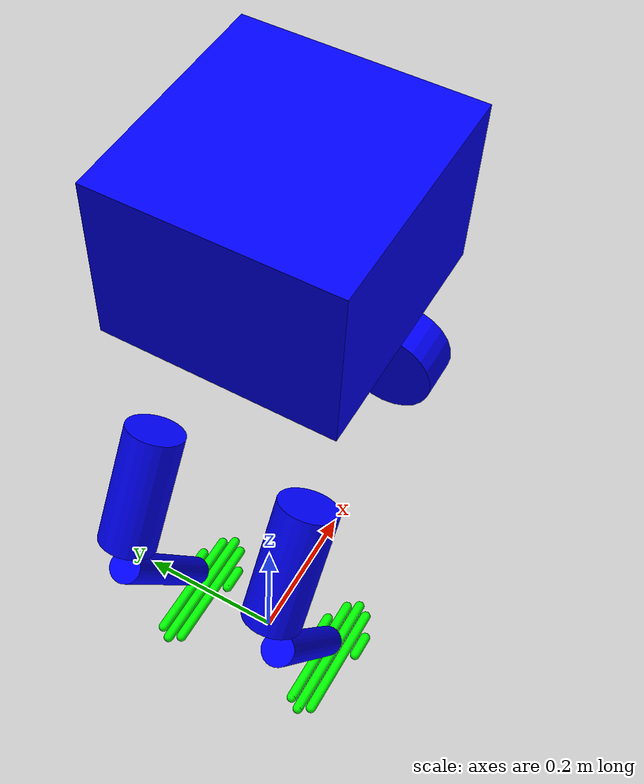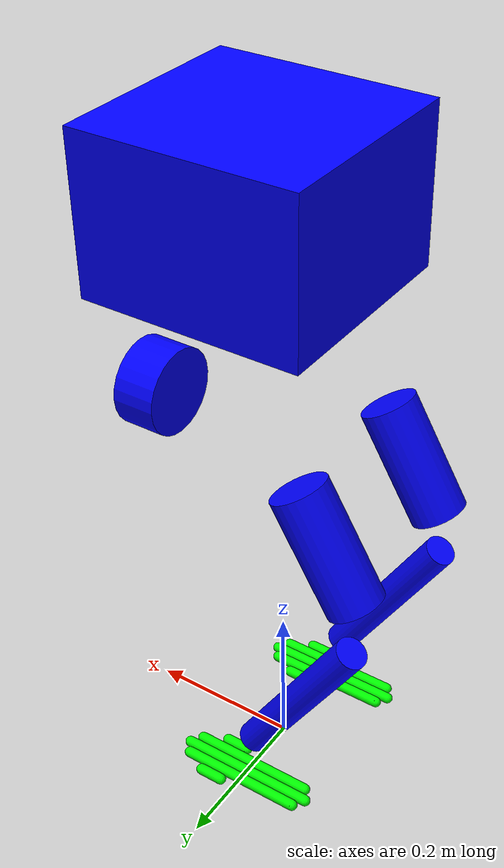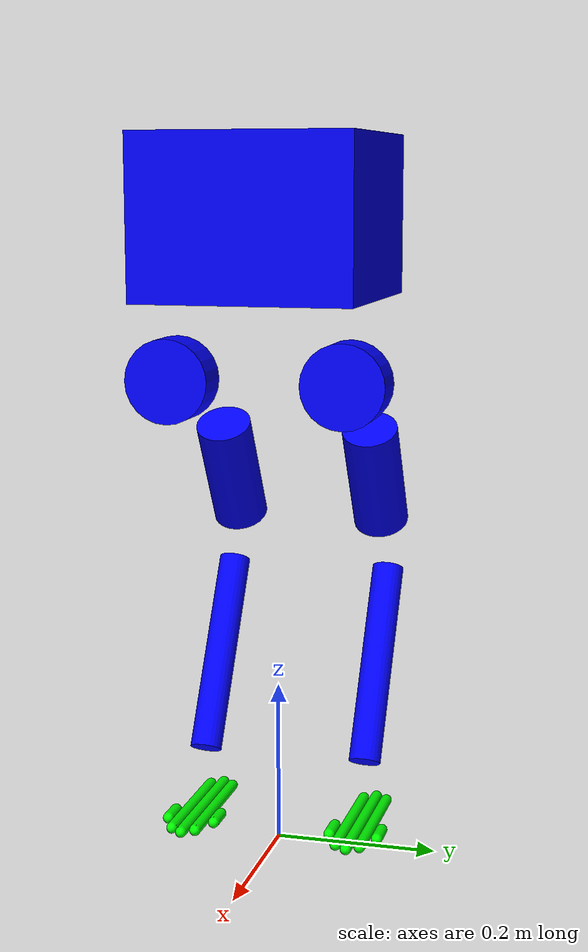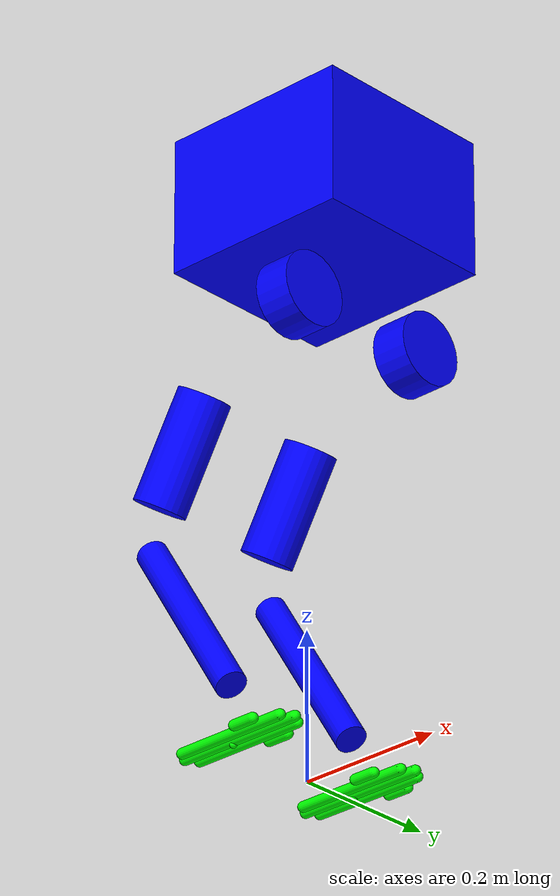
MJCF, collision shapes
<mujoco model="flat_foot">
    <compiler angle="radian" meshdir="../meshes/" />
    <size njmax="500" nconmax="100" />

    <default>
        <light castshadow="false" diffuse="1 1 1" />
        <camera fovy="60"/>
        <default class="visual">
            <geom contype="0" conaffinity="0" group="1" type="mesh" rgba="0.9 0.9 0.9 1.0"/>
        </default>
        <geom contype="1" conaffinity="1" condim="3" friction="0.6 0.005 0.0001" rgba="0.5 0.6 0.7 0.0" margin="0.001" group="0" />
    </default>
    <visual>
        <rgba com="0.502 1.0 0 0.5" contactpoint="1.0 1.0 0.6 0.4" contactforce="0.2 0.98 0.2 0.8"/>
        <scale com="0.2" forcewidth="0.05" contactwidth="0.10" contactheight="0.04"/>
    </visual>

    <asset>
        <mesh name="base_Link" file="base_Link.STL" />
        <mesh name="abad_L_Link" file="abad_L_Link.STL" />
        <mesh name="hip_L_Link" file="hip_L_Link.STL" />
        <mesh name="knee_L_Link" file="knee_L_Link.STL" />
        <mesh name="ankle_L_Link" file="ankle_L_Link.STL" />
        <mesh name="abad_R_Link" file="abad_R_Link.STL" />
        <mesh name="hip_R_Link" file="hip_R_Link.STL" />
        <mesh name="knee_R_Link" file="knee_R_Link.STL" />
        <mesh name="ankle_R_Link" file="ankle_R_Link.STL" />
    </asset>

    <option integrator="implicitfast" timestep="0.001"/>

    <worldbody>
        <body name="base_Link" pos="0 0 0.85">
            <inertial pos="0.0457123 0.000139854 -0.163809" quat="0.972578 -0.00615364 -0.232461 0.00398682" mass="9.595" diaginertia="0.154712 0.11093 0.0846371" />
            <freejoint name="floating_base_joint"/>
            <site name="imu" pos="0 0 0"/>
            <geom class="visual" rgba="0.79216 0.81961 0.93333 1" mesh="base_Link" />
            <geom name="base_collision" size="0.135 0.13 0.095" pos="0.03 0 -0.072" type="box" rgba="0 0 1 0" />

            <body name="abad_L_Link" pos="0.05556 0.105 -0.2602">
                <inertial pos="-0.06977 0.04479 0.00057" quat="0.595024 0.579772 0.394141 0.393019" mass="1.469" diaginertia="0.00252289 0.00208104 0.00139163" />
                <joint name="abad_L_Joint" pos="0 0 0" axis="1 0 0" limited="true" range="-0.38397 1.39626" />
                <geom class="visual" rgba="0.79216 0.81961 0.93333 1" mesh="abad_L_Link" />
                <geom name="abad_L_collision" size="0.05 0.025" pos="0.03 0 0" quat="0.500398 0.5 0.499602 0.5" type="cylinder" rgba="0 0 1 0" />

                <body name="hip_L_Link" pos="-0.077 0.0205 0">
                    <inertial pos="-0.02869 -0.0477 -0.03992" quat="0.853885 0.192797 0.226903 0.426877" mass="2.3" diaginertia="0.0233264 0.0230229 0.00277548" />
                    <joint name="hip_L_Joint" pos="0 0 0" axis="0 1 0" limited="true" range="-1.01229 1.39626" />
                    <geom class="visual" rgba="1 1 1 1" mesh="hip_L_Link" />
                    <geom name="hip_L_collision" size="0.035 0.075" pos="-0.1 -0.03 -0.14" quat="0.965093 0 0.261909 0" type="cylinder" rgba="0 0 1 0" />

                    <body name="knee_L_Link" pos="-0.15 -0.0205 -0.25981">
                        <inertial pos="0.11452 0.0013 -0.19367" quat="0.965543 0.00476557 -0.259713 -0.0159388" mass="1.22" diaginertia="0.0144103 0.0143581 0.00061582" />
                        <joint name="knee_L_Joint" pos="0 0 0" axis="0 -1 0" limited="true" range="-0.872665 1.36136" />
                        <geom class="visual" rgba="0.79216 0.81961 0.93333 1" mesh="knee_L_Link" />
                        <geom name="knee_L_collision" size="0.02 0.13" pos="0.078 0 -0.12" quat="0.962425 0 -0.271547 0" type="cylinder" rgba="0 0 1 0" />

                        <body name="ankle_L_Link" pos="0.15 0 -0.25981">
                            <inertial pos="0.01074 -0.00061 -0.03314" quat="0.013732 0.694322 0.0150212 0.719377" mass="0.62" diaginertia="0.0019759 0.00181179 0.000523633" />
                            <joint name="ankle_L_Joint" pos="0 0 0" axis="0 -1 0" limited="true" range="-1.15192 1.5708" frictionloss="0.01" />
                            <geom class="visual" rgba="0.26667 0.26667 0.26667 1" mesh="ankle_L_Link" />
                            <geom name="L_collision1" type ="capsule" size="0.007" fromto="-0.08 0 -0.045 0.1 0.0 -0.045" rgba="0 1 0 1"/>
                            <geom name="L_collision2" type ="capsule" size="0.007" fromto="-0.07 0.015 -0.045 0.09 0.015 -0.045" rgba="0 1 0 1"/>
                            <geom name="L_collision3" type ="capsule" size="0.007" fromto="-0.07 -0.015 -0.045 0.09 -0.015 -0.045" rgba="0 1 0 1"/>
                            <geom name="L_collision4" type ="capsule" size="0.007" fromto="0.03 0.03 -0.045 0.06 0.03 -0.045" rgba="0 1 0 1"/>
                            <geom name="L_collision5" type ="capsule" size="0.007" fromto="0.03 -0.03 -0.045 0.06 -0.03 -0.045" rgba="0 1 0 1"/>
                            <site name="left_foot"  pos="0 0 -0.05" quat="1 0 0 0" size="0.005" rgba="0 1 0 1"/>
                        </body>
                    </body>
                </body>
            </body>
            <body name="abad_R_Link" pos="0.05556 -0.105 -0.2602">
                <inertial pos="-0.06977 -0.04479 0.00057" quat="0.393019 0.394141 0.579772 0.595024" mass="1.469" diaginertia="0.00252289 0.00208104 0.00139163" />
                <joint name="abad_R_Joint" pos="0 0 0" axis="1 0 0" limited="true" range="-1.39626 0.38397" />
                <geom class="visual" rgba="0.79216 0.81961 0.93333 1" mesh="abad_R_Link" />
                <geom name="abad_R_collision" size="0.05 0.025" pos="0.03 0 0" quat="0.500398 0.5 0.499602 0.5" type="cylinder" rgba="0 0 1 0" />

                <body name="hip_R_Link" pos="-0.077 -0.0205 0">
                    <inertial pos="-0.02869 0.0477 -0.03992" quat="0.426877 0.226903 0.192797 0.853885" mass="2.3" diaginertia="0.0233264 0.0230229 0.00277548" />
                    <joint name="hip_R_Joint" pos="0 0 0" axis="0 -1 0" limited="true" range="-1.39626 1.01229" />
                    <geom class="visual" rgba="1 1 1 1" mesh="hip_R_Link" />
                    <geom name="hip_R_collision" size="0.035 0.075" pos="-0.1 0.03 -0.14" quat="0.965093 0 0.261909 0" type="cylinder" rgba="0 0 1 0" />

                    <body name="knee_R_Link" pos="-0.15 0.0205 -0.25981">
                        <inertial pos="0.11452 -0.0013 -0.19367" quat="0.965543 -0.00476557 -0.259713 0.0159388" mass="1.22" diaginertia="0.0144103 0.0143581 0.00061582" />
                        <joint name="knee_R_Joint" pos="0 0 0" axis="0 1 0" limited="true" range="-1.36136 0.872665" />
                        <geom class="visual" rgba="0.79216 0.81961 0.93333 1" mesh="knee_R_Link" />
                        <geom name="knee_R_collision" size="0.02 0.13" pos="0.078 0 -0.12" quat="0.962425 0 -0.271547 0" type="cylinder" rgba="0 0 1 0" />

                        <body name="ankle_R_Link" pos="0.15 0 -0.25981">
                            <inertial pos="0.01074 0.00061 -0.03314" quat="-0.013732 0.694322 -0.0150212 0.719377" mass="0.62" diaginertia="0.0019759 0.00181179 0.000523633" />
                            <joint name="ankle_R_Joint" pos="0 0 0" axis="0 -1 0" limited="true" range="-1.15192 1.5708" frictionloss="0.01" />
                            <geom class="visual" rgba="0.26667 0.26667 0.26667 1" mesh="ankle_R_Link" />
                            <geom name="R_collision1" type ="capsule" size="0.007" fromto="-0.08 0 -0.045 0.1 0.0 -0.045" rgba="0 1 0 1"/>
                            <geom name="R_collision2" type ="capsule" size="0.007" fromto="-0.07 0.015 -0.045 0.09 0.015 -0.045" rgba="0 1 0 1"/>
                            <geom name="R_collision3" type ="capsule" size="0.007" fromto="-0.07 -0.015 -0.045 0.09 -0.015 -0.045" rgba="0 1 0 1"/>
                            <geom name="R_collision4" type ="capsule" size="0.007" fromto="0.03 0.03 -0.045 0.06 0.03 -0.045" rgba="0 1 0 1"/>
                            <geom name="R_collision5" type ="capsule" size="0.007" fromto="0.03 -0.03 -0.045 0.06 -0.03 -0.045" rgba="0 1 0 1"/>
                            <site name="right_foot" pos="0 0 -0.05" quat="1 0 0 0" size="0.005" rgba="0 1 0 1"/>
                        </body>
                    </body>
                </body>
            </body>
        </body>
    </worldbody>

    <sensor>
        <velocimeter name="imu_lin_vel" site="imu"/>
        <gyro name="imu_ang_vel" site="imu"/>
        <accelerometer name="imu_lin_acc" site="imu"/>
        <subtreeangmom name="root_angmom" body="base_Link"/>
        <jointpos name="abad_L_Joint"    joint="abad_L_Joint" />
        <jointpos name="hip_L_Joint"     joint="hip_L_Joint" />
        <jointpos name="knee_L_Joint"    joint="knee_L_Joint" />
        <jointpos name="ankle_L_Joint"   joint="ankle_L_Joint" />
        <jointpos name="abad_R_Joint"    joint="abad_R_Joint" />
        <jointpos name="hip_R_Joint"     joint="hip_R_Joint" />
        <jointpos name="knee_R_Joint"    joint="knee_R_Joint" />
        <jointpos name="ankle_R_Joint"   joint="ankle_R_Joint" />
    </sensor>

</mujoco>
